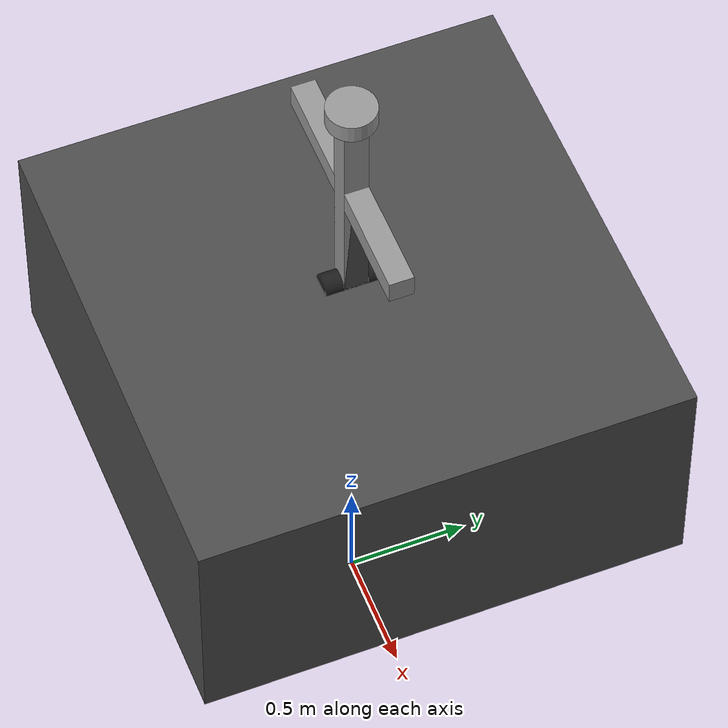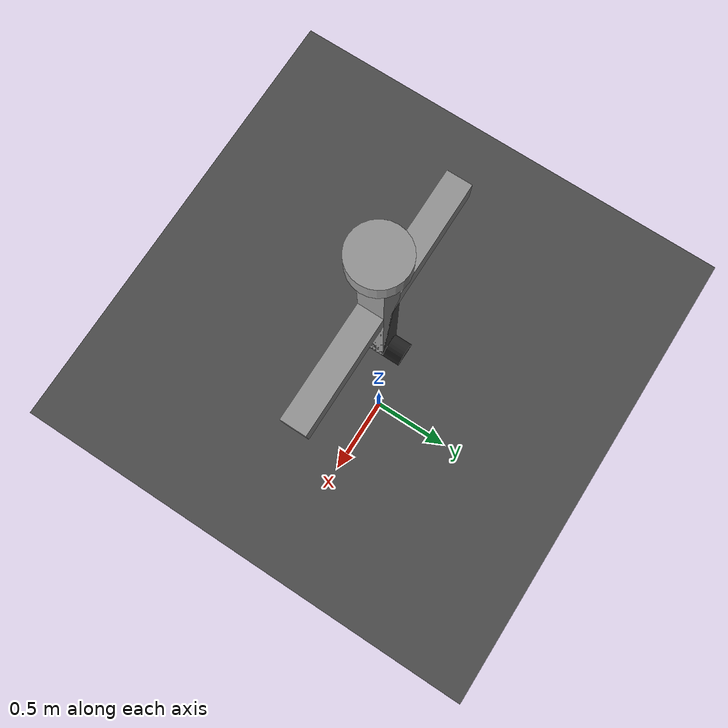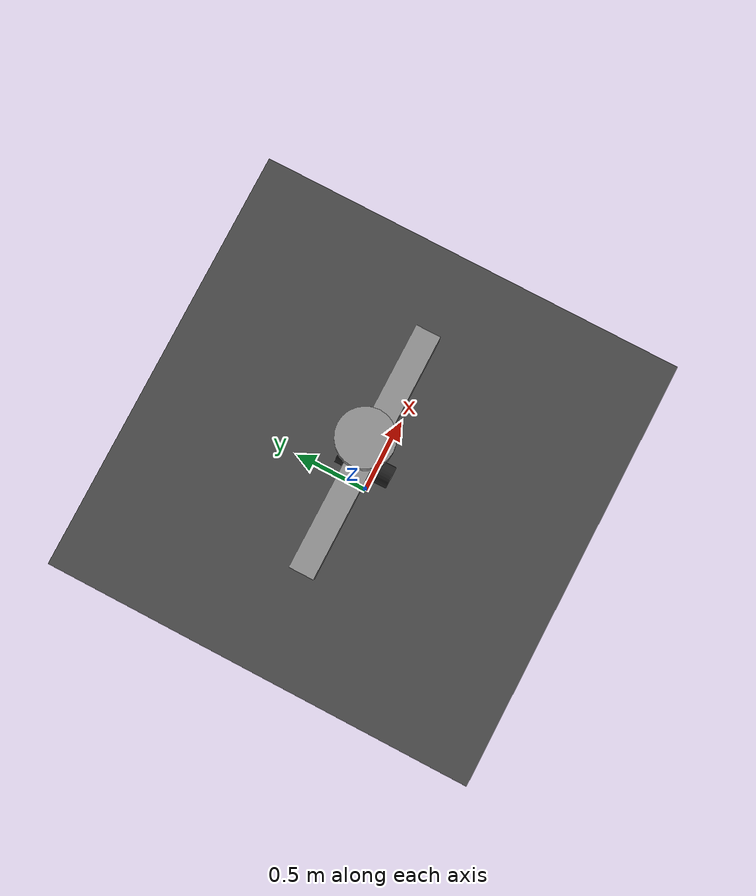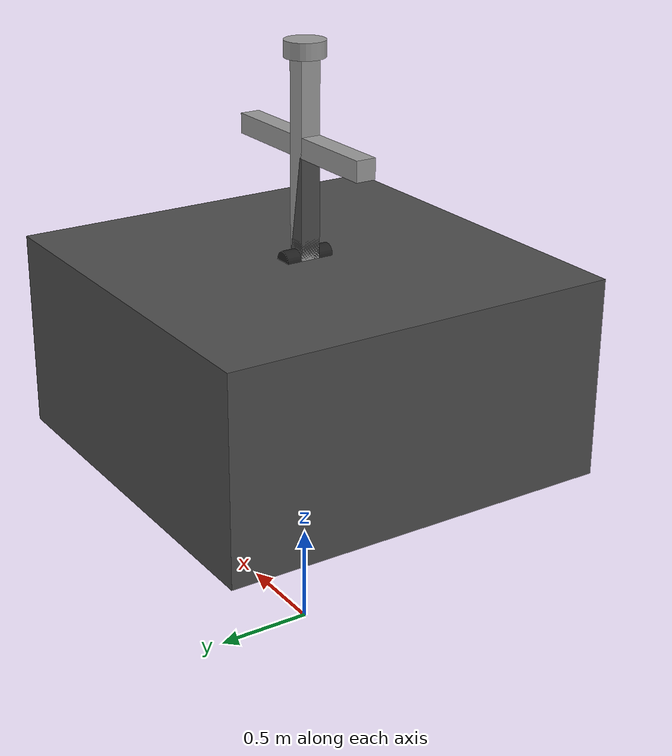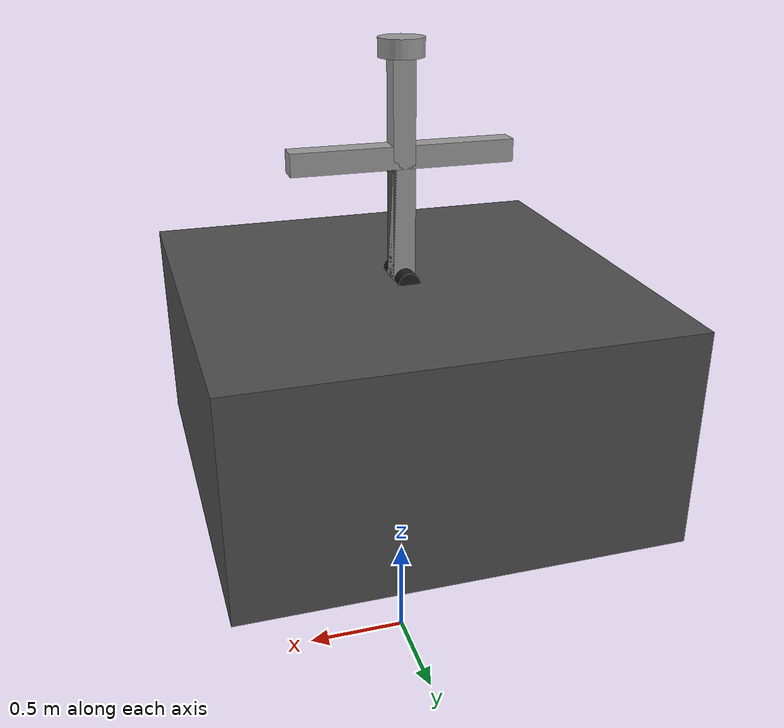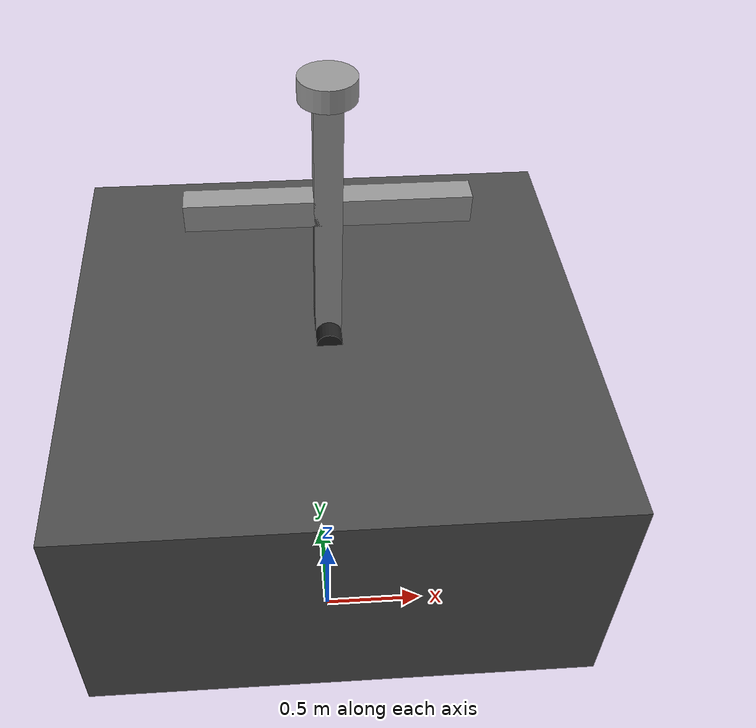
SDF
<sdf version="1.5">
 <world name="default">
  <scene>
   <sky><clouds><speed>12</speed></clouds></sky>
   <ambient>0.95 0.95 0.95 1</ambient>
   <background>0.3 0.3 0.3 1</background>
   <shadows>true</shadows>
  </scene>
  <include><uri>model://sun</uri></include>
  <include><uri>model://surv_payload</uri><name>pl1</name><pose>0 0 2   0 0 0</pose></include>
  <spherical_coordinates>
   <surface_model>EARTH_WGS84</surface_model>
   <latitude_deg>37.413534</latitude_deg>
   <longitude_deg>-121.996561</longitude_deg>
   <elevation>1.3</elevation>
  </spherical_coordinates>
  <physics name="default_physics" default="0" type="ode">
   <gravity>0 0 -9.8066</gravity>
   <ode>
    <solver>
     <type>quick</type>
     <iters>10</iters>
     <sor>1.3</sor>
     <use_dynamic_moi_rescaling>0</use_dynamic_moi_rescaling>
    </solver>
    <constraints>
     <cfm>0</cfm>
     <erp>0.2</erp>
     <contact_max_correcting_vel>100</contact_max_correcting_vel>
     <contact_surface_layer>0.001</contact_surface_layer>
    </constraints>
   </ode>
   <max_step_size>0.004</max_step_size>
   <real_time_factor>1</real_time_factor>
   <real_time_update_rate>250</real_time_update_rate>
   <magnetic_field>6.0e-6 2.3e-5 -4.2e-5</magnetic_field>
  </physics>
 </world>
</sdf>

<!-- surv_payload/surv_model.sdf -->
<sdf version="1.5">
    <model name="surv_payload">
    <static>false</static>

    <joint name="world_base" type="fixed">
        <parent>world</parent>
        <child>base</child>
    </joint>

    <link name="base">
        <pose>0 0 0   0 0 0</pose>

        <visual name="visual">
            <pose>0 0 -0.5   0 0 0</pose>
            <geometry>
                <box>
                  <size>2.0 2.0 1.0</size>
                </box>
            </geometry>
            <material>
                <script>
                    <uri>file://media/materials/scripts/gazebo.material</uri>
                    <name>Gazebo/DarkGrey</name>
                </script>
            </material>
        </visual>
    </link>

    <include>
        <uri>model://extendable_mast/</uri>
        <pose>0 0 0.5    0 0 0</pose>
    </include>

    <joint name="base_to_mast" type="fixed">
        <parent>base</parent>
        <child>extendable_mast::em_base_phantom</child>
    </joint>

    <include>
        <uri>model://sensor_mount/</uri>
        <pose relative_to="extendable_mast::em_top_mount_phantom">0 0 0.25   0 0 0</pose>
    </include>

    <joint name="mast_to_sensor_mount" type="fixed">
        <parent>extendable_mast::em_top_mount_phantom</parent>
        <child>sensor_mount::sensor_mount_base</child>
    </joint>

    <include>
        <uri>model://eo_daylight_cam/</uri>
        <pose relative_to="sensor_mount::sensor_mount_eo_1_link">0 0 0   1.5707 0 0</pose>
    </include>

    <joint name="sensor_mount_eo_1_to_cam_with_lrf" type="fixed">
        <parent>sensor_mount::sensor_mount_eo_1_link</parent>
        <child>eo_daylight_cam::eodlcam_phantom_base</child>
    </joint>

    <include>
        <uri>model://lrf/</uri>
        <pose relative_to="eo_daylight_cam::eodlcam_phantom_aux_mount">0 0 0   -1.5707 0 0</pose>
    </include>

    <joint name="eo_daylight_cam_to_lrf" type="fixed">
        <parent>eo_daylight_cam::eodlcam_phantom_aux_mount</parent>
        <child>lrf::lrf_lrf</child>
    </joint>

  </model>
</sdf>

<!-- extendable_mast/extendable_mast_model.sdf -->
<sdf version="1.5">
    <model name="extendable_mast">
        <static>false</static>

        <link name="em_base_phantom">
            <pose>0 0 0   0 0 0</pose>
        </link>

        <joint name="em_base_phantom_to_fixed_base" type="fixed">
            <parent>em_base_phantom</parent>
            <child>em_fixed_base</child>
        </joint>

        <link name="em_fixed_base">

            <visual name="visual">
                <geometry>
                    <box>
                        <size>0.1 0.1 1.0</size>
                    </box>
                </geometry>
                <material>
                    <script>
                        <uri>file://media/materials/scripts/gazebo.material</uri>
                        <name>Gazebo/Grey</name>
                    </script>
                </material>
            </visual>

        </link>

        <joint name="em_seg1_lift" type="prismatic">
            <parent>em_fixed_base</parent>
            <child>em_seg_1</child>

            <axis>
                <xyz>
                    0.0 0.0 1.0
                </xyz>
                <dynamics>
                    <damping>0.05</damping>
                    <friction>0.05</friction>
                </dynamics>
                <limit>
                    <!-- Keeping the upper limit 25% higher than what's expected should move things as desired -->
                    <lower>0.0</lower>
                    <upper>1.2</upper>
                </limit>
            </axis>

        </joint>

        <link name="em_seg_1">

            <!-- mast must have a weight to let PID controller work-->
            <intertial>
                <mass>5</mass>
            </intertial>

            <visual name="visual">
                <geometry>
                    <box>
                        <size>0.1 0.1 1.0</size>
                    </box>
                </geometry>
                <material>
                    <script>
                        <uri>file://media/materials/scripts/gazebo.material</uri>
                        <name>Gazebo/Grey</name>
                    </script>
                </material>
            </visual>

        </link>

        <joint name="em_seg2_lift" type="prismatic">

            <pose relative_to="em_seg_1">0 0 0   0 0 0</pose>

            <parent>em_seg_1</parent>
            <child>em_seg_2</child>

            <axis>
                <xyz>
                    0.0 0.0 1.0
                </xyz>
                <dynamics>
                    <damping>0.05</damping>
                    <friction>0.05</friction>
                </dynamics>
                <limit>
                    <!-- Keeping the upper limit 25% higher than what's expected should move things as desired -->
                    <lower>0.0</lower>
                    <upper>1.2</upper>
                </limit>
            </axis>

        </joint>

        <link name="em_seg_2">

            <pose relative_to="em_seg_1">0 0 0   0 0 0</pose>

            <intertial>
                <mass>5</mass>
            </intertial>

            <visual name="visual">

                <geometry>
                    <box>
                        <size>0.1 0.1 1.0</size>
                    </box>
                </geometry>em_seg_2
                <material>
                    <script>
                        <uri>file://media/materials/scripts/gazebo.material</uri>
                        <name>Gazebo/Grey</name>
                    </script>
                </material>
            </visual>

        </link>

        <joint name="em_seg_2_to_em_top_mount_phantom" type="fixed">
            <parent>em_seg_2</parent>
            <child>em_top_mount_phantom</child>
        </joint>

        <link name="em_top_mount_phantom">
            <pose relative_to="em_seg_2">0 0 0.5   0 0 0</pose>

            <intertial>
                <mass>50</mass>
            </intertial>

            <visual name="visual">
                <geometry>
                    <cylinder>
                        <radius>0.1</radius>
                        <length>0.08</length>
                    </cylinder>
                </geometry>
                <material>
                    <script>
                        <uri>file://media/materials/scripts/gazebo.material</uri>
                        <name>Gazebo/Grey</name>
                    </script>
                </material>

            </visual>
        </link>

        <plugin name="extendable_mast_controller" filename="libextendable_mast_controller.so">
            <topic_name_sub_cmds>
                mast_command
            </topic_name_sub_cmds>

            <topic_name_pub_status>
                mast_status
            </topic_name_pub_status>

            <link_name_segment_mount>
                em_top_mount_phantom
            </link_name_segment_mount>

            <joint_lift_seg_1>
                em_seg1_lift
            </joint_lift_seg_1>

            <joint_lift_seg_2>
                em_seg2_lift
            </joint_lift_seg_2>

            <joint_lift_seg_1_pid>
                450.0 100.0 100.0
            </joint_lift_seg_1_pid>

            <joint_lift_seg_2_pid>
                450.0 100.0 100.0
            </joint_lift_seg_2_pid>

            <step_height>0.02</step_height>

            <publish_rate>4</publish_rate>
            <reported_min_height>1.0</reported_min_height>
            <reported_max_height>3.0</reported_max_height>
        </plugin>
    </model>
</sdf>

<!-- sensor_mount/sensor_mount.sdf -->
<sdf version="1.5">
    <model name="sensor_mount">
    <static>false</static>

    <!-- phantom link - this is what is linked to when including as fixed-->
    <link name="sensor_mount_base">
        <pose>0 0 0   0 0 0</pose>
    </link>

    <joint name="sensor_mount_pan" type="revolute">
        <parent>sensor_mount_base</parent>
        <child>sensor_mount_link</child>
        <axis>
            <xyz>
                0.0 0.0 1.0
            </xyz>
            <dynamics>
                <damping>0.05</damping>
                <friction>1.05</friction>
            </dynamics>
            <limit>
                <!-- 15 rad/s -->
                <velocity>0.261799</velocity>
            </limit>
        </axis>
    </joint>

    <link name="sensor_mount_link">

        <pose>0 0 0   0 0 0</pose>

        <collision name="collision">
            <geometry>
                <box>
                  <size>0.1 0.1 0.5</size>
                </box>
            </geometry>
            <surface>
                <friction>
                    <ode>
                        <mu>0.35</mu>
                        <mu>0.55</mu>
                    </ode>
                </friction>
            </surface>
        </collision>

        <visual name="visual">
            <pose>0 0 0   0 0 0</pose>
            <geometry>
                <box>
                  <size>0.1 0.1 0.5</size>
                </box>
            </geometry>
            <material>
                <script>
                    <uri>file://media/materials/scripts/gazebo.material</uri>
                    <name>Gazebo/DarkGrey</name>
                </script>
            </material>
        </visual>

        <collision name="collisionhorizontal">
            <pose>0 0 0.3 0 0 0</pose>
            <geometry>
                <box>
                  <size>1.0 0.1 0.1</size>
                </box>
            </geometry>
            <surface>
                <friction>
                    <ode>
                        <mu>0.35</mu>
                        <mu>0.55</mu>
                    </ode>
                </friction>
            </surface>
        </collision>
        <visual name="visualhorizontal">
            <pose>0 0 0.3 0 0 0</pose>
            <geometry>
                <box>
                  <size>1.0 0.1 0.1</size>
                </box>
            </geometry>
            <material>
                <script>
                    <uri>file://media/materials/scripts/gazebo.material</uri>
                    <name>Gazebo/Grey</name>
                </script>
            </material>
        </visual>

        <intertial>
            <mass>25</mass>
        </intertial>

    </link>

    <joint name="sensor_mount_eo_1_tilt" type="revolute">
        <parent>sensor_mount_link</parent>
        <child>sensor_mount_eo_1_link</child>
        <axis>
            <xyz>
                1.0 0.0 0.0
            </xyz>
            <limit>
                <!-- 15 rad/s -->
                <velocity>0.261799</velocity>
                <lower>-1.57</lower>
                <upper>1.57</upper>
            </limit>
            <dynamics>
                <damping>0.05</damping>
                <friction>1.05</friction>
            </dynamics>
        </axis>
    </joint>

    <!-- phantom link to which payload is attached-->
    <link name="sensor_mount_eo_1_link">
        <pose>0.56 0 0.3 0 0 0</pose>
    </link>

    <plugin name="sensor_mount_controller" filename="libsensor_mount_controller.so">
        <topic_name_sub_ptz_targets>
            ptz_targets
        </topic_name_sub_ptz_targets>

        <topic_name_sub_relative_ptz>
            relative_pan_tilt
        </topic_name_sub_relative_ptz>

        <topic_name_pub_status>
            sensor_mount_status
        </topic_name_pub_status>

        <link_name_pan>
            sensor_mount::sensor_mount_base
        </link_name_pan>

        <joint_name_pan>
            sensor_mount_pan
        </joint_name_pan>

        <link_name_tilt>
            sensor_mount_eo_1_link
        </link_name_tilt>

        <joint_name_tilt>
            sensor_mount_eo_1_tilt
        </joint_name_tilt>

        <publish_rate>4</publish_rate>
        <pan_rate>0.0174533</pan_rate>
        <tilt_rate>0.0174533</tilt_rate>

    </plugin>

  </model>
</sdf>

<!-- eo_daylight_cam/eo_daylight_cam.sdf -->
<sdf version="1.5">
    <model name="eo_daylight_cam">
    <static>false</static>

    <link name="eodlcam_phantom_base">
    </link>

    <joint name="eodlcam_phantom_base_to_eodlcam_camera" type="fixed">
        <parent>eodlcam_phantom_base</parent>
        <child>eodlcam_camera</child>
    </joint>

    <joint name="eodlcam_phantom_base_to_eodlcam_phantom_aux_mount" type="fixed">
        <parent>eodlcam_phantom_base</parent>
        <child>eodlcam_phantom_aux_mount</child>
    </joint>

    <link name="eodlcam_phantom_aux_mount">
        <pose>0.075 0 0 0 0 0</pose>
    </link>

    <link name="eodlcam_camera">

        <collision name="collision">
            <geometry>
                <cylinder>
                    <radius>0.05</radius>
                    <length>0.25</length>
                </cylinder>
            </geometry>
            <surface>
                <friction>
                <ode>
                    <mu>0.35</mu>
                    <mu>0.55</mu>
                </ode>
                </friction>
            </surface>
        </collision>

        <intertial>
            <mass>5</mass>
        </intertial>

        <visual name="visual-cam">
            <geometry>
                <cylinder>
                    <radius>0.05</radius>
                    <length>0.25</length>
                </cylinder>
            </geometry>
            <material>
                <script>
                    <uri>file://media/materials/scripts/gazebo.material</uri>
                    <name>Gazebo/Black</name>
                </script>
            </material>
        </visual>

        <sensor type="camera" name="eo_cam">
            <update_rate>10.0</update_rate>
            <pose>0 0 -0.1 0 1.5707 0</pose>
            <visualize>true</visualize>

            <camera name="head">
                <horizontal_fov>1.3962634</horizontal_fov>
                <image>
                    <width>800</width>
                    <height>600</height>
                    <format>R8G8B8</format>
                </image>
                <clip>
                    <near>0.02</near>
                    <far>300</far>
                </clip>
                <noise>
                    <type>gaussian</type>
                    <mean>0.0</mean>
                    <stddev>0.007</stddev>
                </noise>
            </camera>
            <plugin name="camera_controller" filename="libgazebo_ros_camera.so">
                <alwaysOn>true</alwaysOn>
                <updateRate>0.0</updateRate>
                <cameraName>payload/eo_cam</cameraName>
                <imageTopicName>image_raw</imageTopicName>
                <cameraInfoTopicName>camera_info</cameraInfoTopicName>
                <frameName>map</frameName>
                <hackBaseline>0.07</hackBaseline>
                <distortionK1>0.0</distortionK1>
                <distortionK2>0.0</distortionK2>
                <distortionK3>0.0</distortionK3>
                <distortionT1>0.0</distortionT1>
                <distortionT2>0.0</distortionT2>
            </plugin>
        </sensor>
    </link>

  </model>
</sdf>

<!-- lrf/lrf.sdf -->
<sdf version="1.5">
    <model name="lrf">
    <static>false</static>

    <link name="lrf_phantom_base">
    </link>

    <joint name="lrf_phantom_base_to_lrf" type="fixed">
        <parent>lrf_phantom_base</parent>
        <child>lrf_lrf</child>
    </joint>

    <link name="lrf_lrf">

        <collision name="collision">
            <geometry>
                <box>
                    <size>0.06 0.20 0.06</size>
                </box>
            </geometry>
        </collision>

        <intertial>
            <mass>1.5</mass>
        </intertial>

        <visual name="visual-lrf">
            <geometry>
                <box>
                    <size>0.06 0.20 0.06</size>
                </box>
            </geometry>
            <material>
                <script>
                    <uri>file://media/materials/scripts/gazebo.material</uri>
                    <name>Gazebo/Grey</name>
                </script>
            </material>
        </visual>

    </link>

    <joint name="lrf_phantom_base_to_sensor" type="fixed">
        <parent>lrf_phantom_base</parent>
        <child>lrf_sensor</child>
    </joint>

    <link name="lrf_sensor">
        <pose>0 0 0 0 0 0</pose>
        <!-- Add a ray sensor, and give it a name -->
        <sensor type="ray" name="sensor">

            <pose>0.0 0.1 0.0 0 0 1.5707</pose>

            <!-- Enable visualization to see the rays in the GUI -->
            <visualize>true</visualize>

            <!-- Set the update rate of the sensor -->
            <update_rate>1</update_rate>

            <ray>

                <!-- The scan element contains the horizontal and vertical beams.
                    We are leaving out the vertical beams for this tutorial. -->
                <scan>

                    <!-- The horizontal beams -->
                    <horizontal>
                        <!-- The velodyne has 32 beams(samples) -->
                        <samples>1</samples>

                        <resolution>1</resolution>

                        <!-- Minimum angle in radians -->
                        <min_angle>0</min_angle>

                        <!-- Maximum angle in radians -->
                        <max_angle>0</max_angle>
                    </horizontal>
                </scan>

                <!-- Range defines characteristics of an individual beam -->
                <range>

                    <!-- Minimum distance of the beam -->
                    <min>0.05</min>

                    <!-- Maximum distance of the beam -->
                    <max>150</max>

                    <!-- Linear resolution of the beam -->
                    <resolution>0.02</resolution>
                </range>
            </ray>
        </sensor>
    </link>

    <plugin name="lrf_controller" filename="liblrf_controller.so">
        <topic_name_pub_status>
            lrf_status
        </topic_name_pub_status>

        <topic_name_sub_commands>
            lrf_command
        </topic_name_sub_commands>

        <topic_name_ray_sensor>
            /gazebo/default/pl1/lrf/lrf_sensor/sensor/scan
        </topic_name_ray_sensor>

        <publish_rate>4</publish_rate>

    </plugin>
  </model>
</sdf>
